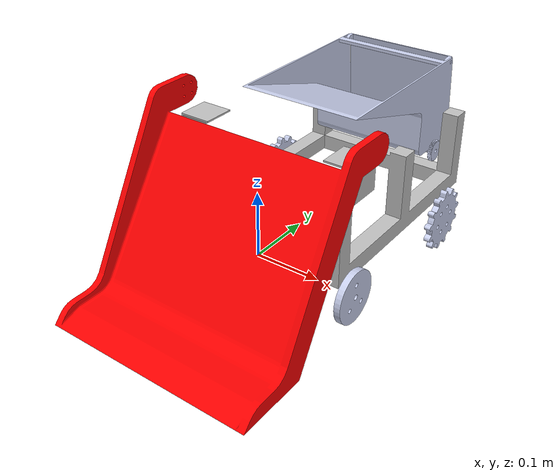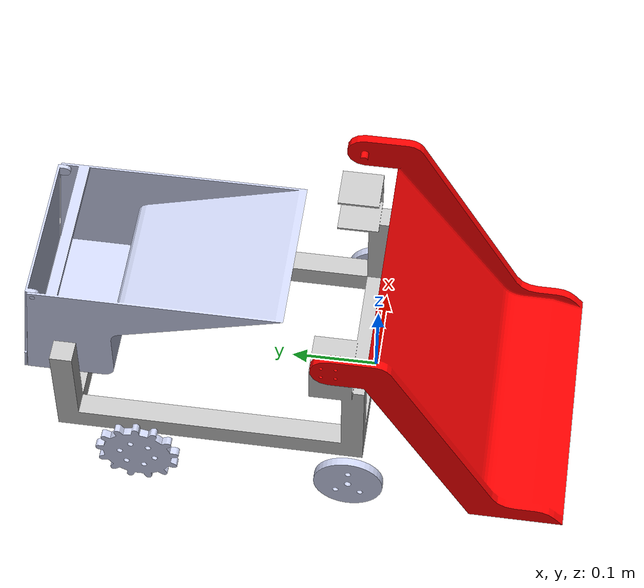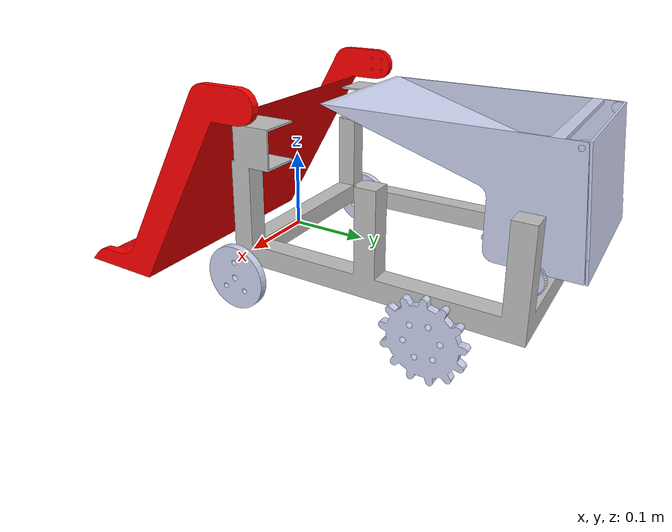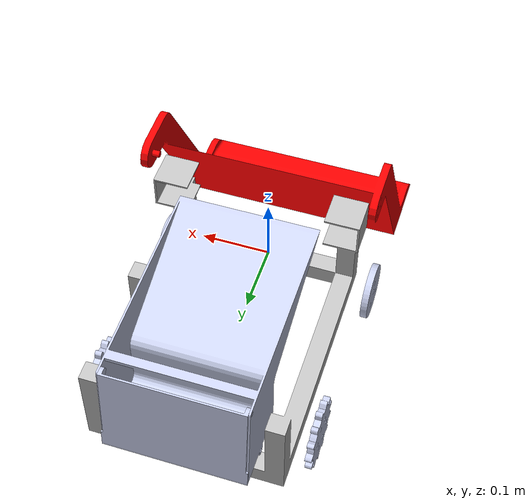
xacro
<?xml version="1.0" encoding="utf-8"?>
<robot xmlns:xacro="http://www.ros.org/wiki/xacro" name="LilT_Combined_URDF">

  <xacro:arg name="use_ros2_control" default="true"/>
  <xacro:arg name="sim_mode" default="false"/>

  <xacro:if value="$(arg use_ros2_control)">
      <xacro:include filename="ros2_control.xacro"/>
  </xacro:if>
  <xacro:unless value="$(arg use_ros2_control)">
      <xacro:include filename="gazebo_control.xacro"/>
  </xacro:unless>

  <link name="base_link" />
  <link name="base_footprint" />
  <joint name="base_joint" type="fixed">
    <parent link="base_link" />
    <child link="base_footprint" />
    <origin xyz="0 0 0" rpy="0 0 0" />
  </joint>

  <link name="Base">
    <inertial>
      <origin xyz="0.0071933 0.035942 -0.37341" rpy="0 0 0" />
      <mass value="2.0994" />
      <inertia ixx="0.0052099" ixy="-7.8944E-22" ixz="-4.9264E-20" iyy="0.0060071" iyz="3.293E-21"
        izz="0.0014684" />
    </inertial>
    <visual>
      <origin xyz="0 0 0" rpy="0 0 0" />
      <geometry>
        <mesh filename="file://$(find terrence_2)/description/meshes/Base.STL" />
      </geometry>
      <material name="">
        <color rgba="0.75294 0.75294 0.75294 1" />
      </material>
    </visual>
    <collision>
      <origin xyz="0 0 0" rpy="0 0 0" />
      <geometry>
        <mesh filename="file://$(find terrence_2)/description/meshes/Base.STL" />
      </geometry>
    </collision>
  </link>
  <joint name="Baseplate_joint" type="fixed">
    <origin xyz="0 0 0" rpy="${pi/2} 0 0" />
    <parent link="base_link" />
    <child link="Base" />
  </joint>

  <gazebo reference="Base">
    <material>Gazebo/White</material>
  </gazebo>

  <link name="DriverWheel">
    <inertial>
      <origin xyz="-0.030264 6.665E-05 1.2263E-10" rpy="0 0 0" />
      <mass value="0.046607" />
      <inertia ixx="3.7938E-05" ixy="-6.4305E-20" ixz="-1.3428E-19" iyy="1.9406E-05"
        iyz="2.6768E-13" izz="1.9256E-05" />
    </inertial>
    <visual>
      <origin xyz="0 0 0" rpy="0 0 0" />
      <geometry>
        <mesh filename="file://$(find terrence_2)/description/meshes/DriverWheel.STL" />
      </geometry>
      <material name="">
        <color rgba="0.79216 0.81961 0.93333 1" />
      </material>
    </visual>
    <collision>
      <origin xyz="0 0 0" rpy="0 0 0" />
      <geometry>
        <mesh filename="file://$(find terrence_2)/description/meshes/DriverWheel.STL" />
      </geometry>
    </collision>
  </link>
  <joint name="DW_Joint" type="continuous">
    <origin xyz="0.17907 -0.0127 -0.0127" rpy="0 0 0" />
    <parent link="Base" />
    <child link="DriverWheel" />
    <axis xyz="1 0 0" />
    <limit effort="10" velocity="0" />
  </joint>

  <gazebo reference="DriverWheel">
    <material>Gazebo/Blue</material>
      <mu1 value="0.001"/>
      <mu2 value="0.001"/>
  </gazebo>

  <link name="DriverSprocket">
    <inertial>
      <origin xyz="0.0097746 -3.5292E-09 -5.2457E-08" rpy="0 0 0" />
      <mass value="0.054042" />
      <inertia ixx="5.3673E-05" ixy="-1.8152E-12" ixz="1.8049E-14" iyy="2.7245E-05"
        iyz="-1.9672E-11" izz="2.7245E-05" />
    </inertial>
    <visual>
      <origin xyz="0 0 0" rpy="0 0 0" />
      <geometry>
        <mesh filename="file://$(find terrence_2)/description/meshes/DriverSprocket.STL" />
      </geometry>
      <material name="">
        <color rgba="0.79216 0.81961 0.93333 1" />
      </material>
    </visual>
    <collision>
      <origin xyz="0 0 0" rpy="0 0 0" />
      <geometry>
        <mesh filename="file://$(find terrence_2)/description/meshes/DriverSprocket.STL" />
      </geometry>
    </collision>
  </link>
  <joint name="DS_Joint" type="continuous">
    <origin xyz="0.14605 -0.012431 -0.25959" rpy="0 0 0" />
    <parent link="Base" />
    <child link="DriverSprocket" />
    <axis xyz="1 0 0" />
    <limit effort="10" velocity="10" />
  </joint>

  <gazebo reference="DriverSprocket">
    <material>Gazebo/Blue</material>
  </gazebo>

  <link name="PassWheel">
    <inertial>
      <origin xyz="0.020612 8.4006E-05 -0.00023239" rpy="0 0 0" />
      <mass value="0.046607" />
      <inertia ixx="3.7938E-05" ixy="-6.4876E-20" ixz="-1.3466E-19" iyy="1.9406E-05"
        iyz="-3.2644E-10" izz="1.9256E-05" />
    </inertial>
    <visual>
      <origin xyz="0 0 0" rpy="0 0 0" />
      <geometry>
        <mesh filename="file://$(find terrence_2)/description/meshes/PassWheel.STL" />
      </geometry>
      <material name="">
        <color rgba="0.79216 0.81961 0.93333 1" />
      </material>
    </visual>
    <collision>
      <origin xyz="0 0 0" rpy="0 0 0" />
      <geometry>
        <mesh filename="file://$(find terrence_2)/description/meshes/PassWheel.STL" />
      </geometry>
    </collision>
  </link>
  <joint name="PW_Joint" type="continuous">
    <origin xyz="-0.17907 -0.0127 -0.0127" rpy="0 0 0" />
    <parent link="Base" />
    <child link="PassWheel" />
    <axis xyz="1 0 0" />
    <limit effort="10" velocity="0" />
  </joint>

  <gazebo reference="PassWheel">
    <material>Gazebo/Blue</material>
      <mu1 value="0.001"/>
      <mu2 value="0.001"/>
  </gazebo>

  <link name="PassSprocket">
    <inertial>
      <origin xyz="-0.0056813 -3.6211E-09 -5.2434E-08" rpy="0 0 0" />
      <mass value="0.054042" />
      <inertia ixx="5.3673E-05" ixy="-1.8152E-12" ixz="2.2008E-14" iyy="2.7245E-05"
        iyz="-2.0018E-11" izz="2.7245E-05" />
    </inertial>
    <visual>
      <origin xyz="0 0 0" rpy="0 0 0" />
      <geometry>
        <mesh filename="file://$(find terrence_2)/description/meshes/PassSprocket.STL" />
      </geometry>
      <material name="">
        <color rgba="0.79216 0.81961 0.93333 1" />
      </material>
    </visual>
    <collision>
      <origin xyz="0 0 0" rpy="0 0 0" />
      <geometry>
        <mesh filename="file://$(find terrence_2)/description/meshes/PassSprocket.STL" />
      </geometry>
    </collision>
  </link>
  <joint name="PS_Joint" type="continuous">
    <origin xyz="-0.14605 -0.012969 -0.25959" rpy="0 0 0" />
    <parent link="Base" />
    <child link="PassSprocket" />
    <axis xyz="1 0 0" />
    <limit effort="10" velocity="10" />
  </joint>

  <gazebo reference="PassSprocket">
    <material>Gazebo/Blue</material>
  </gazebo>

  <link name="Loader">
    <inertial>
      <origin xyz="-0.14124 -0.17161 0.14187" rpy="0 0 0" />
      <mass value="1.4896" />
      <inertia ixx="0.011793" ixy="-2.9875E-05" ixz="2.4692E-05" iyy="0.020991" iyz="0.0052507"
        izz="0.024104" />
    </inertial>
    <visual>
      <origin xyz="0 0 0" rpy="0 0 0" />
      <geometry>
        <mesh filename="file://$(find terrence_2)/description/meshes/Loader.STL" />
      </geometry>
      <material name="">
        <color rgba="1 0 0 1" />
      </material>
    </visual>
    <collision>
      <origin xyz="0 0 0" rpy="0 0 0" />
      <geometry>
        <mesh filename="file://$(find terrence_2)/description/meshes/Loader.STL" />
      </geometry>
    </collision>
  </link>
  <joint name="LoaderJoint" type="revolute">
    <origin xyz="0.14135 0.20066 -0.03683" rpy="0 0 0" />
    <parent link="Base" />
    <child link="Loader" />
    <axis xyz="-1 0 0" />
    <limit lower="0" upper="1.571" effort="10" velocity="0.7854" />
  </joint>

  <gazebo reference="Loader">
    <material>Gazebo/Red</material>
    <mu1 value="0.001"/>
    <mu2 value="0.001"/>
  </gazebo>

  <link name="Hopper">
    <inertial>
      <origin xyz="-0.079042 0.080085 0.065194" rpy="0 0 0" />
      <mass value="0.29528" />
      <inertia ixx="0.002494" ixy="3.9471E-05" ixz="3.2132E-05" iyy="0.0032471" iyz="-0.00071427"
        izz="0.0022122" />
    </inertial>
    <visual>
      <origin xyz="0 0 0" rpy="0 0 0" />
      <geometry>
        <mesh filename="file://$(find terrence_2)/description/meshes/Hopper.STL" />
      </geometry>
      <material name="">
        <color rgba="0.79216 0.81961 0.93333 1" />
      </material>
    </visual>
    <collision>
      <origin xyz="0 0 0" rpy="0 0 0" />
      <geometry>
        <mesh filename="file://$(find terrence_2)/description/meshes/Hopper.STL" />
      </geometry>
    </collision>
  </link>
  <joint name="HopperJoint" type="revolute">
    <origin xyz="0.076774 0.05207 -0.3429" rpy="0 0 0" />
    <parent link="Base" />
    <child link="Hopper" />
    <axis xyz="-1 0 0" />
    <limit lower="0" upper="0.785" effort="10" velocity="0.3927" />
  </joint>

  <gazebo reference="Hopper">
    <material>Gazebo/White</material>
  </gazebo>

  <link name="Door">
    <inertial>
      <origin xyz="-0.09525 -0.062153 -0.013449" rpy="0 0 0" />
      <mass value="0.067736" />
      <inertia ixx="0.00011563" ixy="1.0111E-19" ixz="1.4928E-21" iyy="0.00020595" iyz="-1.1678E-05"
        izz="0.00031894" />
    </inertial>
    <visual>
      <origin xyz="0 0 0" rpy="0 0 0" />
      <geometry>
        <mesh filename="file://$(find terrence_2)/description/meshes/Door.STL" />
      </geometry>
      <material name="">
        <color rgba="0.79216 0.81961 0.93333 1" />
      </material>
    </visual>
    <collision>
      <origin xyz="0 0 0" rpy="0 0 0" />
      <geometry>
        <mesh filename="file://$(find terrence_2)/description/meshes/Door.STL" />
      </geometry>
    </collision>
  </link>
  <joint name="DoorJoint" type="revolute">
    <origin xyz="0.014539 0.1397 -0.033006" rpy="0 0 0" />
    <parent link="Hopper" />
    <child link="Door" />
    <axis xyz="1 0 0" />
    <limit lower="0" upper="0.3927" effort="0" velocity="0" />
  </joint>

  <gazebo reference="Door">
    <material>Gazebo/White</material>
  </gazebo>

</robot>
